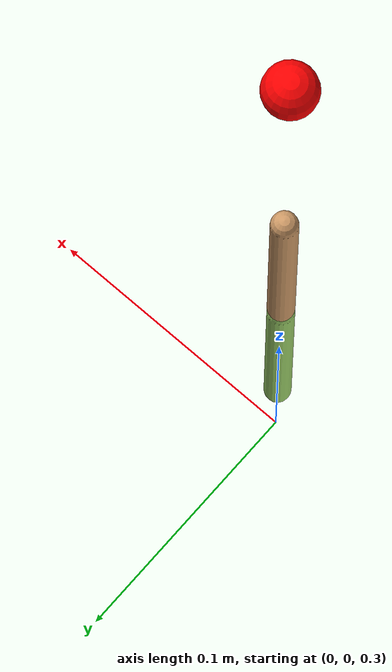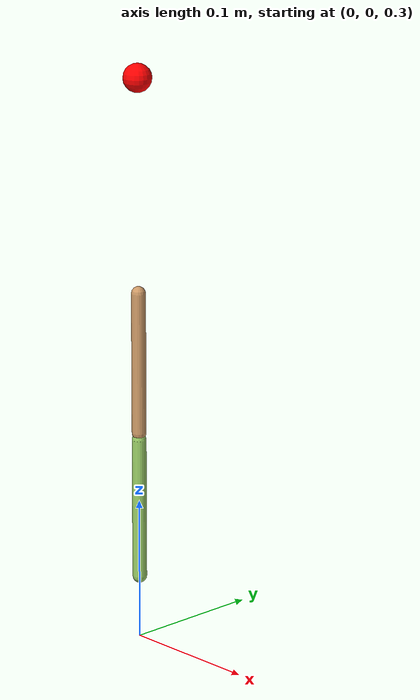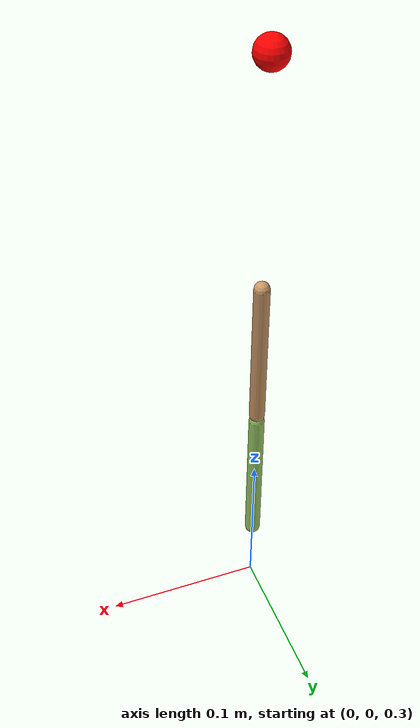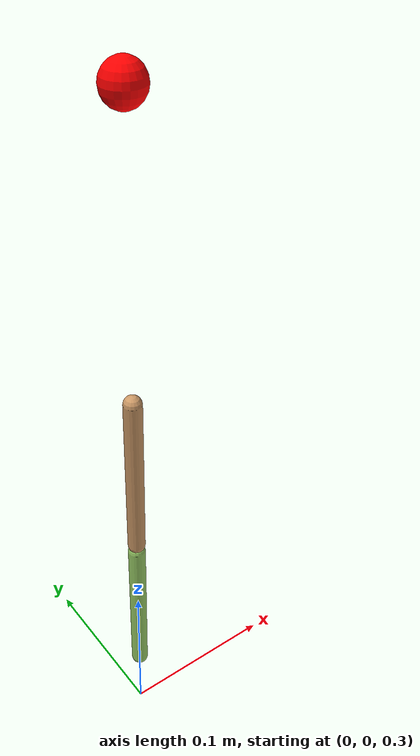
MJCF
<mujoco model="two_capsule_ball_weld">
    <worldbody>
        <body name="anchor" pos="0 0 0.7">
            <geom type="sphere" size="0.01" rgba="1 0 0 1" contype="0" conaffinity="0"/>
        </body>
        <body name="B0" pos="0 0 0.5">
            <freejoint/>
            <geom type="capsule" size="0.005 0.05" mass="0.001" rgba="0.8 0.6 0.4 1"/>
            <body name="B1" pos="0 0 -0.105">
                <joint type="ball" damping="0.01" armature="0.001"/>
                <geom type="capsule" size="0.005 0.05" mass="0.001" rgba="0.6 0.8 0.4 1"/>
            </body>
        </body>
    </worldbody>

    <equality>
        <weld body1="B0" body2="anchor"/>
    </equality>
</mujoco>
